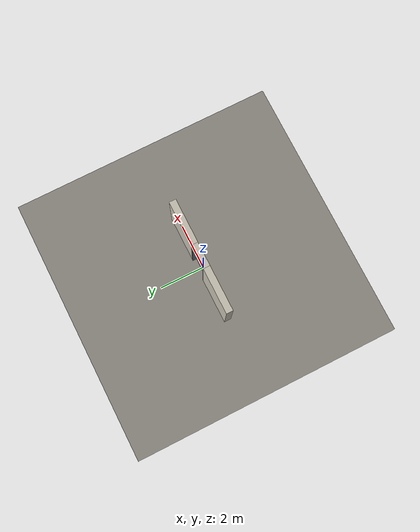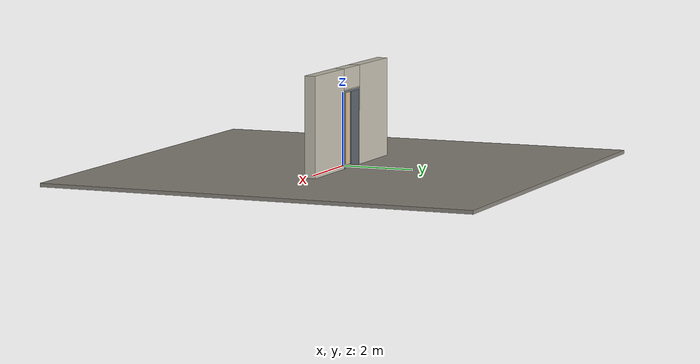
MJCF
<?xml version="1.0" ?>
<mujoco model="db0869_swing_single_minimal">
  <compiler angle="radian" meshdir="../../hardware" texturedir="../../textures" autolimits="true" inertiafromgeom="false"/>
  <option timestep="0.002" integrator="implicitfast" cone="elliptic" impratio="10" noslip_iterations="3">
    <flag multiccd="enable"/>
  </option>
  <size memory="16M"/>
  <default>
    <geom condim="4" solref="0.005 1" solimp="0.95 0.99 0.001"/>
    <joint solreflimit="0.005 1" solimplimit="0.95 0.99 0.001"/>
    <tendon solreflimit="0.005 1"/>
    <equality solref="0.002 1"/>
  </default>
  <visual>
    <headlight ambient="0.4 0.4 0.4" diffuse="0.7 0.7 0.7" specular="0.2 0.2 0.2"/>
    <quality shadowsize="4096"/>
    <map znear="0.01" zfar="60"/>
  </visual>
  <asset>
    <material name="mat_floor" rgba="0.55 0.53 0.5 1" specular="0.2" shininess="0.15" reflectance="0"/>
    <material name="mat_wall" rgba="0.78 0.76 0.7 1" specular="0.2" shininess="0.1" reflectance="0"/>
    <material name="mat_leaf" rgba="0.85 0.74 0.58 1" specular="0.2" shininess="0.5" reflectance="0"/>
    <material name="mat_hinge" rgba="0.65 0.66 0.68 1" specular="0.74" shininess="0.5" reflectance="0.36"/>
    <material name="mat_op_stainless" rgba="0.75 0.76 0.77 1" specular="0.8" shininess="0.65" reflectance="0.4"/>
    <material name="mat_frame" rgba="0.45 0.48 0.52 1" specular="0.32" shininess="0.6" reflectance="0.08"/>
    <material name="mat_seal" rgba="0.1 0.1 0.1 1" specular="0.2" shininess="0.1" reflectance="0"/>
    <material name="mat_closer" rgba="0.22 0.17 0.13 1" specular="0.8" shininess="0.6" reflectance="0.4"/>
    <material name="mat_kick" rgba="0.75 0.76 0.77 1" specular="0.8" shininess="0.65" reflectance="0.4"/>
    <texture name="skybox" type="skybox" builtin="gradient" rgb1="0.6 0.7 0.85" rgb2="0.9 0.92 0.95" width="256" height="256"/>
  </asset>
  <worldbody>
    <light name="sun" pos="1.5 -2.5 4" dir="-0.3 0.5 -0.8" directional="true" diffuse="0.8 0.8 0.8" specular="0.3 0.3 0.3" castshadow="true"/>
    <light name="fill" pos="-1.5 2.5 3" dir="0.3 -0.5 -0.7" directional="true" diffuse="0.35 0.35 0.4" castshadow="false"/>
    <camera name="robot_view" pos="0 -2.421187 1.734312" xyaxes="1 0 0 0 0.26963 0.962964" fovy="52"/>
    <camera name="far_view" pos="0 2.663187 1.734312" xyaxes="-1 0 0 0 -0.26963 0.962964" fovy="52"/>
    <camera name="iso" pos="1.932062 -2.014438 2.141063" xyaxes="0.741536 0.670913 0 -0.242917 0.268487 0.932151" fovy="46"/>
    <camera name="detail_handle" pos="0.5335 -0.679 1.296" xyaxes="0.97561 0.219512 0 -0.070934 0.315262 0.94635" fovy="38"/>
    <geom name="floor" type="box" size="6 6 0.05" pos="0 0 -0.05" material="mat_floor" group="0" contype="1" conaffinity="1" friction="0.8 0.005 0.0001" density="2400"/>
    <geom name="wall_left" type="box" size="0.99475 0.15 1.35" pos="-1.50525 0.121 1.35" material="mat_wall" group="0" contype="1" conaffinity="1" friction="0.6 0.005 0.0001" density="800"/>
    <geom name="wall_right" type="box" size="0.97975 0.15 1.35" pos="1.52025 0.121 1.35" material="mat_wall" group="0" contype="1" conaffinity="1" friction="0.6 0.005 0.0001" density="800"/>
    <geom name="wall_header" type="box" size="0.5255 0.15 0.2875" pos="0.015 0.121 2.4125" material="mat_wall" group="0" contype="1" conaffinity="1" friction="0.6 0.005 0.0001" density="800"/>
    <geom name="jamb_hinge" type="box" size="0.025 0.15 1.0225" pos="-0.4855 0.121 1.0225" material="mat_frame" group="0" contype="1" conaffinity="1" friction="0.6 0.005 0.0001" density="300"/>
    <geom name="jamb_strike" type="box" size="0.025 0.15 1.0225" pos="0.4855 0.121 1.0225" material="mat_frame" group="0" contype="1" conaffinity="1" friction="0.6 0.005 0.0001" density="300"/>
    <geom name="stud_strike" type="box" size="0.015 0.15 1.0225" pos="0.5255 0.121 1.0225" material="mat_wall" group="0" contype="1" conaffinity="1" friction="0.6 0.005 0.0001" density="500"/>
    <geom name="jamb_head" type="box" size="0.5255 0.15 0.025" pos="0.015 0.121 2.07" material="mat_frame" group="0" contype="1" conaffinity="1" friction="0.6 0.005 0.0001" density="300"/>
    <geom name="head_stud" type="box" size="0.5255 0.15 0.015" pos="0.015 0.121 2.11" material="mat_wall" group="0" contype="1" conaffinity="1" friction="0.6 0.005 0.0001" density="500"/>
    <geom name="stop_hinge" type="box" size="0.0055 0.016 1.0225" pos="-0.455 0.0385 1.0225" material="mat_frame" group="0" contype="1" conaffinity="1" friction="0.6 0.005 0.0001" density="300"/>
    <geom name="stop_strike" type="box" size="0.0055 0.016 1.0225" pos="0.455 0.0385 1.0225" material="mat_frame" group="0" contype="1" conaffinity="1" friction="0.6 0.005 0.0001" density="300"/>
    <geom name="stop_head" type="box" size="0.4605 0.016 0.0055" pos="0 0.0385 2.0395" material="mat_frame" group="0" contype="1" conaffinity="1" friction="0.6 0.005 0.0001" density="300"/>
    <site name="approach_point" pos="0 -1.5 0" quat="1 0 0 0" size="0.05" rgba="0.2 0.9 0.2 0.5" group="4"/>
    <site name="goal_point" pos="0 1.5 0" quat="1 0 0 0" size="0.05" rgba="0.2 0.9 0.2 0.5" group="4"/>
    <site name="door_plane_center" pos="0 0 1.0225" quat="1 0 0 0" size="0.02" rgba="0.2 0.9 0.2 0.5" group="4"/>
    <body name="leaf" pos="-0.4605 0 0">
      <inertial pos="0.463084 0.0002 1.024921" mass="61.985747" quat="0.499724 0.500225 -0.499777 0.500273" diaginertia="4.35475804 21.158996797 25.493378042"/>
      <joint name="leaf_hinge" type="hinge" axis="0 0 -1" pos="0.003 -0.029 0" limited="true" range="0 1.745329" solreflimit="0.02 1" damping="10.25611" frictionloss="1.386782" stiffness="12.032114" springref="-2.809149" armature="0.02"/>
      <geom name="leaf_slab" type="box" size="0.457 0.022 1.016" pos="0.46 0 1.025" material="mat_leaf" group="0" contype="1" conaffinity="1" friction="0.4 0.005 0.0001" density="1"/>
      <geom name="leaf_push_plate_p" type="box" size="0.05 0.0008 0.2" pos="0.812 0.0228 1.016" material="mat_op_stainless" group="1" contype="0" conaffinity="0" density="7900"/>
      <site name="leaf_push_plate_push_p" pos="0.812 0.022 1.016" quat="1 0 0 0" size="0.012" rgba="0.2 0.9 0.2 0.5" group="4"/>
      <site name="leaf_edge_mid" pos="0.917 0 1.016" quat="1 0 0 0" size="0.02" rgba="0.2 0.9 0.2 0.5" group="4"/>
    </body>
  </worldbody>
  <sensor>
    <jointpos name="leaf_hinge_pos" joint="leaf_hinge"/>
    <jointvel name="leaf_hinge_vel" joint="leaf_hinge"/>
  </sensor>
</mujoco>
